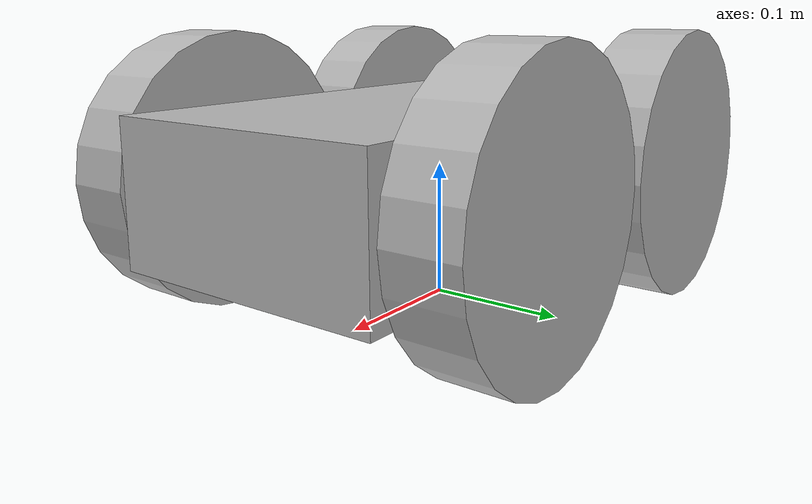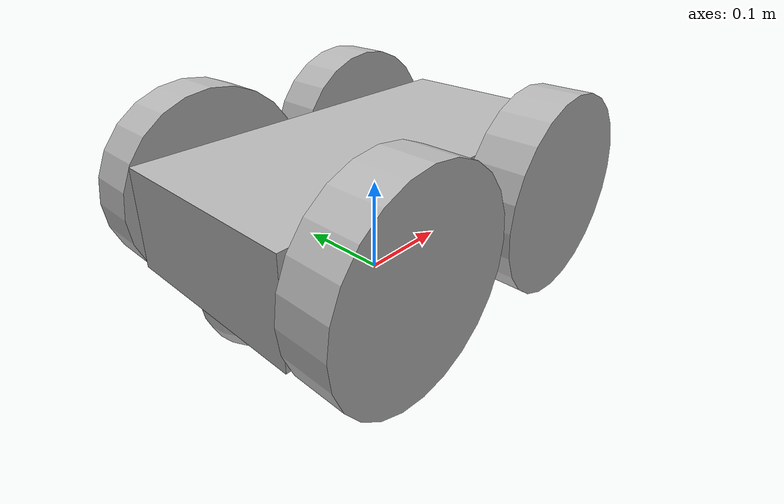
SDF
<?xml version='1.0'?>
 <sdf version='1.4'>
   <model name="my_robot">
     <static>false</static>
     <link name='chassis'>
       <pose>0 0 .1 0 0 0</pose>
       <collision name='collision'>
         <geometry>
           <box>
             <size>.4 .2 .1</size>
           </box>
         </geometry>
       </collision>

       <visual name='visual'>
         <geometry>
           <box>
             <size>.4 .2 .1</size>
           </box>
         </geometry>
       </visual>

       <collision name='caster_collision'>
         <pose>-0.15 0 -0.05 0 0 0</pose>
         <geometry>
           <sphere>
           <radius>.05</radius>
         </sphere>
       </geometry>

       <surface>
         <friction>
           <ode>
             <mu>0</mu>
             <mu2>0</mu2>
             <slip1>1.0</slip1>
             <slip2>1.0</slip2>
           </ode>
         </friction>
       </surface>
     </collision>

     <visual name='caster_visual'>
       <pose>-0.15 0 -0.05 0 0 0</pose>
       <geometry>
         <sphere>
           <radius>.05</radius>
         </sphere>
       </geometry>
     </visual>
   </link>
   <link name="left_wheel">
     <pose>0.1 0.13 0.1 0 1.5707 1.5707</pose>
     <collision name="collision">
       <geometry>
         <cylinder>
           <radius>.1</radius>
           <length>.05</length>
         </cylinder>
       </geometry>
     </collision>
     <visual name="visual">
       <geometry>
         <cylinder>
           <radius>.1</radius>
           <length>.05</length>
         </cylinder>
       </geometry>
     </visual>
   </link>

   <link name="left_wheel2">
     <pose>-0.11 0.13 0.1 0 1.5707 1.5707</pose>
     <collision name="collision">
       <geometry>
         <cylinder>
           <radius>.1</radius>
           <length>.05</length>
         </cylinder>
       </geometry>
     </collision>
     <visual name="visual">
       <geometry>
         <cylinder>
           <radius>.1</radius>
           <length>.05</length>
         </cylinder>
       </geometry>
     </visual>
   </link>

   <link name="right_wheel">
     <pose>0.1 -0.13 0.1 0 1.5707 1.5707</pose>
     <collision name="collision">
       <geometry>
         <cylinder>
           <radius>.1</radius>
           <length>.05</length>
         </cylinder>
       </geometry>
     </collision>
     <visual name="visual">
       <geometry>
         <cylinder>
           <radius>.1</radius>
           <length>.05</length>
         </cylinder>
       </geometry>
     </visual>
   </link>

   <link name="right_wheel2">
     <pose>-0.11 -0.13 0.1 0 1.5707 1.5707</pose>
     <collision name="collision">
       <geometry>
         <cylinder>
           <radius>.1</radius>
           <length>.05</length>
         </cylinder>
       </geometry>
     </collision>
     <visual name="visual">
       <geometry>
         <cylinder>
           <radius>.1</radius>
           <length>.05</length>
         </cylinder>
       </geometry>
     </visual>
   </link>
   <joint type="revolute" name="left_wheel_hinge">
     <pose>0 0 -0.03 0 0 0</pose>
     <child>left_wheel</child>
     <parent>chassis</parent>
     <axis>
       <xyz>0 1 0</xyz>
     </axis>
   </joint>
   <joint type="revolute" name="left_wheel_hinge2">
     <pose>0 0 -0.03 0 0 0</pose>
     <child>left_wheel2</child>
     <parent>chassis</parent>
     <axis>
       <xyz>0 1 0</xyz>
     </axis>
   </joint>
   <joint type="revolute" name="right_wheel_hinge">
     <pose>0 0 0.03 0 0 0</pose>
     <child>right_wheel</child>
     <parent>chassis</parent>
     <axis>
       <xyz>0 1 0</xyz>
     </axis>
   </joint>

   <joint type="revolute" name="right_wheel_hinge2">
     <pose>0 0 0.03 0 0 0</pose>
     <child>right_wheel2</child>
     <parent>chassis</parent>
     <axis>
       <xyz>0 1 0</xyz>
     </axis>
   </joint>
   </model>
  </sdf>
